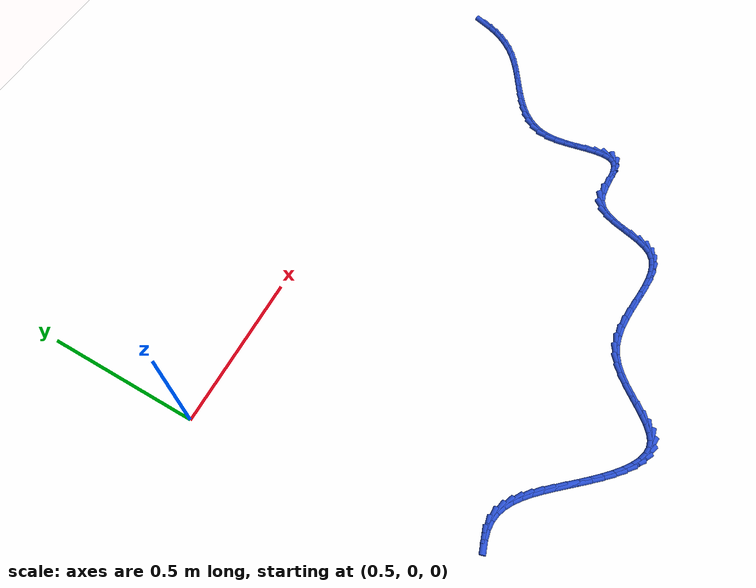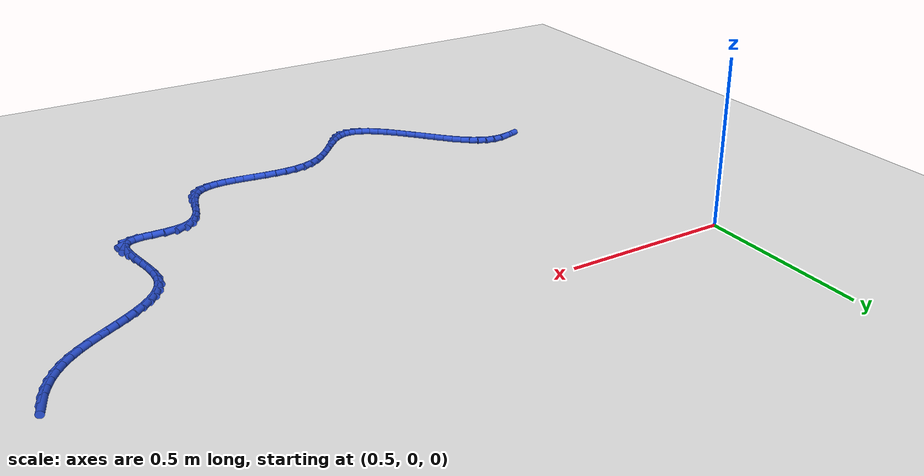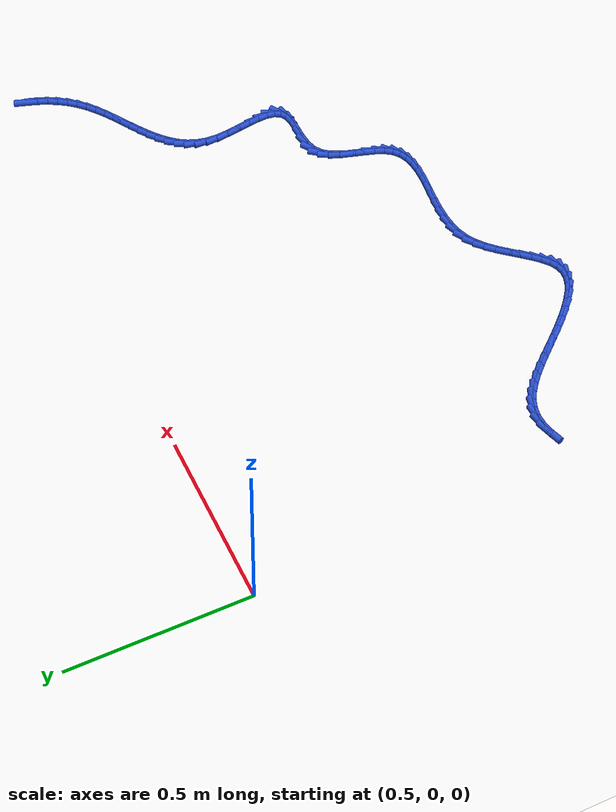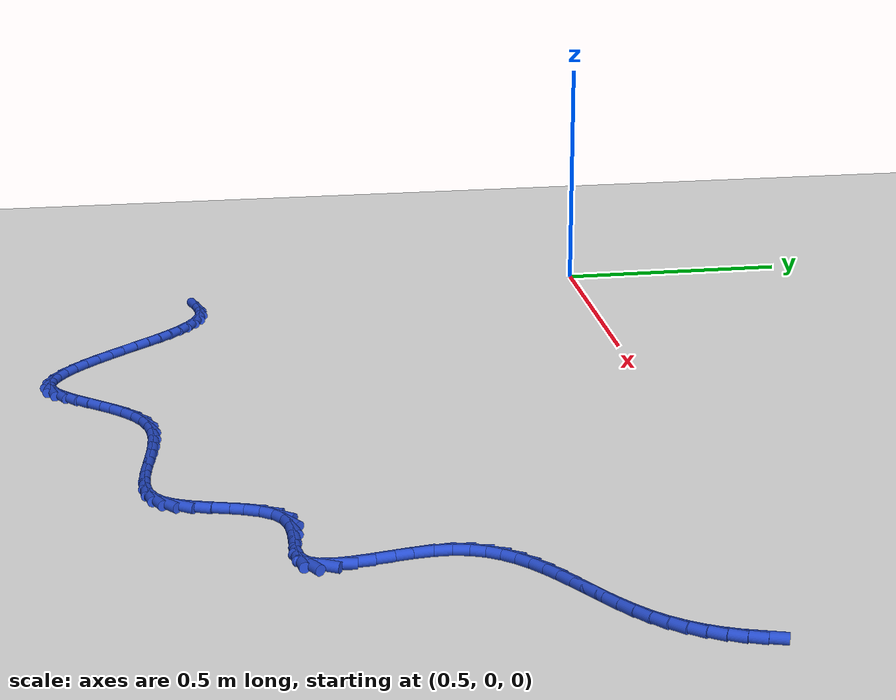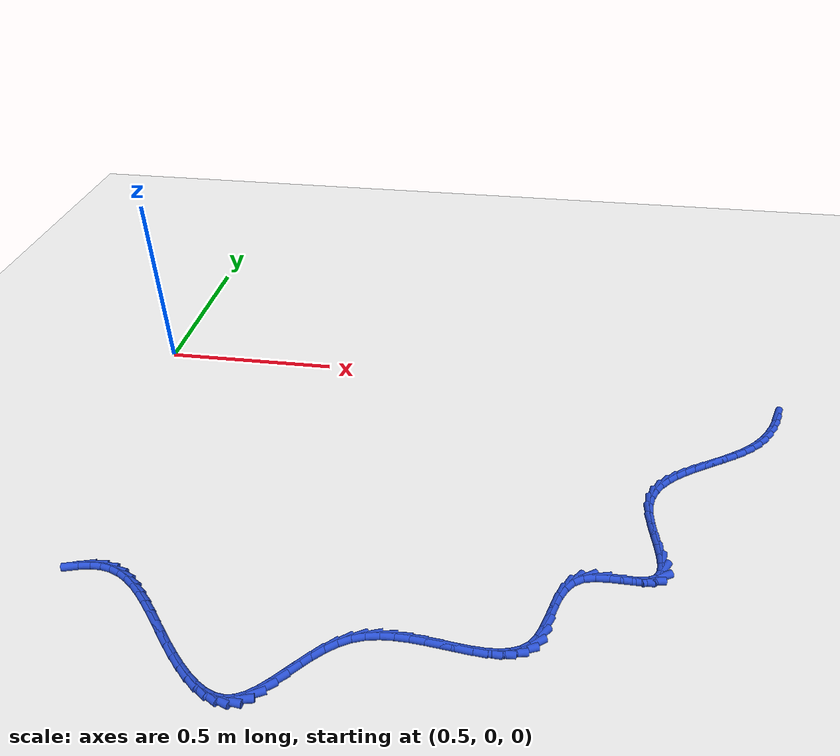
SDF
<sdf version="1.6">
 <world name="default">
  <model name="ground_plane">
   <static>1</static>
   <link name="link">
    <collision name="collision">
     <geometry><plane><normal>0 0 1</normal><size>100 100</size></plane></geometry>
     <surface><friction><ode><mu>100</mu><mu2>50</mu2></ode></friction></surface>
    </collision>
    <visual name="visual">
     <cast_shadows>0</cast_shadows>
     <geometry><plane><normal>0 0 1</normal><size>100 100</size></plane></geometry>
     <material>
      <script><uri>file://media/materials/scripts/gazebo.material</uri><name>Gazebo/WhiteGlow</name></script>
     </material>
    </visual>
   </link>
  </model>
  <model name="line">
   <link name="link_124">
    <pose>2.331811635820959 -0.08798505474516802 0.01 0 1.57 1.2636268892197953</pose>
    <collision name="collision">
     <geometry><cylinder><radius>0.01</radius><length>0.08</length></cylinder></geometry>
    </collision>
    <visual name="visual">
     <material>
      <script><name>Gazebo/Blue</name><uri>file://media/materials/scripts/gazebo.material</uri></script>
     </material>
     <geometry><cylinder><radius>0.01</radius><length>0.08</length></cylinder></geometry>
    </visual>
   </link>
   <link name="link_125">
    <pose>2.3225412678821025 -0.11720982022541768 0.01 0 1.57 1.1743032284686212</pose>
    <collision name="collision">
     <geometry><cylinder><radius>0.01</radius><length>0.08</length></cylinder></geometry>
    </collision>
    <visual name="visual">
     <material>
      <script><name>Gazebo/Blue</name><uri>file://media/materials/scripts/gazebo.material</uri></script>
     </material>
     <geometry><cylinder><radius>0.01</radius><length>0.08</length></cylinder></geometry>
    </visual>
   </link>
   <link name="link_126">
    <pose>2.3107899903072404 -0.14527823343732174 0.01 0 1.57 1.0808949239839147</pose>
    <collision name="collision">
     <geometry><cylinder><radius>0.01</radius><length>0.08</length></cylinder></geometry>
    </collision>
    <visual name="visual">
     <material>
      <script><name>Gazebo/Blue</name><uri>file://media/materials/scripts/gazebo.material</uri></script>
     </material>
     <geometry><cylinder><radius>0.01</radius><length>0.08</length></cylinder></geometry>
    </visual>
   </link>
   <link name="link_127">
    <pose>2.296532136829716 -0.172015309610965 0.01 0 1.57 0.9836285335362133</pose>
    <collision name="collision">
     <geometry><cylinder><radius>0.01</radius><length>0.08</length></cylinder></geometry>
    </collision>
    <visual name="visual">
     <material>
      <script><name>Gazebo/Blue</name><uri>file://media/materials/scripts/gazebo.material</uri></script>
     </material>
     <geometry><cylinder><radius>0.01</radius><length>0.08</length></cylinder></geometry>
    </visual>
   </link>
   <link name="link_128">
    <pose>2.2797420411828737 -0.19724606397643224 0.01 0 1.57 0.883028351896669</pose>
    <collision name="collision">
     <geometry><cylinder><radius>0.01</radius><length>0.08</length></cylinder></geometry>
    </collision>
    <visual name="visual">
     <material>
      <script><name>Gazebo/Blue</name><uri>file://media/materials/scripts/gazebo.material</uri></script>
     </material>
     <geometry><cylinder><radius>0.01</radius><length>0.08</length></cylinder></geometry>
    </visual>
   </link>
   <link name="link_129">
    <pose>2.2603940371000557 -0.22079551176380816 0.01 0 1.57 0.7807836445275408</pose>
    <collision name="collision">
     <geometry><cylinder><radius>0.01</radius><length>0.08</length></cylinder></geometry>
    </collision>
    <visual name="visual">
     <material>
      <script><name>Gazebo/Blue</name><uri>file://media/materials/scripts/gazebo.material</uri></script>
     </material>
     <geometry><cylinder><radius>0.01</radius><length>0.08</length></cylinder></geometry>
    </visual>
   </link>
   <link name="link_130">
    <pose>2.238481865519804 -0.24250638256301657 0.01 0 1.57 0.6915920482251551</pose>
    <collision name="collision">
     <geometry><cylinder><radius>0.01</radius><length>0.08</length></cylinder></geometry>
    </collision>
    <visual name="visual">
     <material>
      <script><name>Gazebo/Blue</name><uri>file://media/materials/scripts/gazebo.material</uri></script>
     </material>
     <geometry><cylinder><radius>0.01</radius><length>0.08</length></cylinder></geometry>
    </visual>
   </link>
   <link name="link_131">
    <pose>2.2143192161945024 -0.2625134463871454 0.01 0 1.57 0.6259267844372222</pose>
    <collision name="collision">
     <geometry><cylinder><radius>0.01</radius><length>0.08</length></cylinder></geometry>
    </collision>
    <visual name="visual">
     <material>
      <script><name>Gazebo/Blue</name><uri>file://media/materials/scripts/gazebo.material</uri></script>
     </material>
     <geometry><cylinder><radius>0.01</radius><length>0.08</length></cylinder></geometry>
    </visual>
   </link>
   <link name="link_132">
    <pose>2.1884821277397677 -0.28119093803152234 0.01 0 1.57 0.5822575842106126</pose>
    <collision name="collision">
     <geometry><cylinder><radius>0.01</radius><length>0.08</length></cylinder></geometry>
    </collision>
    <visual name="visual">
     <material>
      <script><name>Gazebo/Blue</name><uri>file://media/materials/scripts/gazebo.material</uri></script>
     </material>
     <geometry><cylinder><radius>0.01</radius><length>0.08</length></cylinder></geometry>
    </visual>
   </link>
   <link name="link_133">
    <pose>2.161554383528146 -0.298920161491276 0.01 0 1.57 0.5590087355679298</pose>
    <collision name="collision">
     <geometry><cylinder><radius>0.01</radius><length>0.08</length></cylinder></geometry>
    </collision>
    <visual name="visual">
     <material>
      <script><name>Gazebo/Blue</name><uri>file://media/materials/scripts/gazebo.material</uri></script>
     </material>
     <geometry><cylinder><radius>0.01</radius><length>0.08</length></cylinder></geometry>
    </visual>
   </link>
   <link name="link_134">
    <pose>2.134119766932181 -0.31608242076153487 0.01 0 1.57 0.5553869719928294</pose>
    <collision name="collision">
     <geometry><cylinder><radius>0.01</radius><length>0.08</length></cylinder></geometry>
    </collision>
    <visual name="visual">
     <material>
      <script><name>Gazebo/Blue</name><uri>file://media/materials/scripts/gazebo.material</uri></script>
     </material>
     <geometry><cylinder><radius>0.01</radius><length>0.08</length></cylinder></geometry>
    </visual>
   </link>
   <link name="link_135">
    <pose>2.106762061324421 -0.33305901983742786 0.01 0 1.57 0.5715992569731848</pose>
    <collision name="collision">
     <geometry><cylinder><radius>0.01</radius><length>0.08</length></cylinder></geometry>
    </collision>
    <visual name="visual">
     <material>
      <script><name>Gazebo/Blue</name><uri>file://media/materials/scripts/gazebo.material</uri></script>
     </material>
     <geometry><cylinder><radius>0.01</radius><length>0.08</length></cylinder></geometry>
    </visual>
   </link>
   <link name="link_136">
    <pose>2.0800650500774105 -0.3502312627140835 0.01 0 1.57 0.6089416949317016</pose>
    <collision name="collision">
     <geometry><cylinder><radius>0.01</radius><length>0.08</length></cylinder></geometry>
    </collision>
    <visual name="visual">
     <material>
      <script><name>Gazebo/Blue</name><uri>file://media/materials/scripts/gazebo.material</uri></script>
     </material>
     <geometry><cylinder><radius>0.01</radius><length>0.08</length></cylinder></geometry>
    </visual>
   </link>
   <link name="link_137">
    <pose>2.054612516563697 -0.3679804533866304 0.01 0 1.57 0.6697662660655723</pose>
    <collision name="collision">
     <geometry><cylinder><radius>0.01</radius><length>0.08</length></cylinder></geometry>
    </collision>
    <visual name="visual">
     <material>
      <script><name>Gazebo/Blue</name><uri>file://media/materials/scripts/gazebo.material</uri></script>
     </material>
     <geometry><cylinder><radius>0.01</radius><length>0.08</length></cylinder></geometry>
    </visual>
   </link>
   <link name="link_138">
    <pose>2.0309882441558242 -0.38668789585019714 0.01 0 1.57 0.757163992689501</pose>
    <collision name="collision">
     <geometry><cylinder><radius>0.01</radius><length>0.08</length></cylinder></geometry>
    </collision>
    <visual name="visual">
     <material>
      <script><name>Gazebo/Blue</name><uri>file://media/materials/scripts/gazebo.material</uri></script>
     </material>
     <geometry><cylinder><radius>0.01</radius><length>0.08</length></cylinder></geometry>
    </visual>
   </link>
   <link name="link_139">
    <pose>2.00977601622634 -0.4067348940999125 0.01 0 1.57 0.8739870892411312</pose>
    <collision name="collision">
     <geometry><cylinder><radius>0.01</radius><length>0.08</length></cylinder></geometry>
    </collision>
    <visual name="visual">
     <material>
      <script><name>Gazebo/Blue</name><uri>file://media/materials/scripts/gazebo.material</uri></script>
     </material>
     <geometry><cylinder><radius>0.01</radius><length>0.08</length></cylinder></geometry>
    </visual>
   </link>
   <link name="link_140">
    <pose>1.9915596161477889 -0.428502752130905 0.01 0 1.57 1.0207368319463395</pose>
    <collision name="collision">
     <geometry><cylinder><radius>0.01</radius><length>0.08</length></cylinder></geometry>
    </collision>
    <visual name="visual">
     <material>
      <script><name>Gazebo/Blue</name><uri>file://media/materials/scripts/gazebo.material</uri></script>
     </material>
     <geometry><cylinder><radius>0.01</radius><length>0.08</length></cylinder></geometry>
    </visual>
   </link>
   <link name="link_141">
    <pose>1.9769228272927177 -0.4523727739383034 0.01 0 1.57 1.192516378002611</pose>
    <collision name="collision">
     <geometry><cylinder><radius>0.01</radius><length>0.08</length></cylinder></geometry>
    </collision>
    <visual name="visual">
     <material>
      <script><name>Gazebo/Blue</name><uri>file://media/materials/scripts/gazebo.material</uri></script>
     </material>
     <geometry><cylinder><radius>0.01</radius><length>0.08</length></cylinder></geometry>
    </visual>
   </link>
   <link name="link_142">
    <pose>1.9664494330336713 -0.4787262635172362 0.01 0 1.57 1.3772684164345248</pose>
    <collision name="collision">
     <geometry><cylinder><radius>0.01</radius><length>0.08</length></cylinder></geometry>
    </collision>
    <visual name="visual">
     <material>
      <script><name>Gazebo/Blue</name><uri>file://media/materials/scripts/gazebo.material</uri></script>
     </material>
     <geometry><cylinder><radius>0.01</radius><length>0.08</length></cylinder></geometry>
    </visual>
   </link>
   <link name="link_143">
    <pose>1.9607232167431965 -0.5079445248628321 0.01 0 1.57 1.554357918771912</pose>
    <collision name="collision">
     <geometry><cylinder><radius>0.01</radius><length>0.08</length></cylinder></geometry>
    </collision>
    <visual name="visual">
     <material>
      <script><name>Gazebo/Blue</name><uri>file://media/materials/scripts/gazebo.material</uri></script>
     </material>
     <geometry><cylinder><radius>0.01</radius><length>0.08</length></cylinder></geometry>
    </visual>
   </link>
   <link name="link_144">
    <pose>1.9601912014083425 -0.5403057737519689 0.01 0 1.57 -1.465289503044301</pose>
    <collision name="collision">
     <geometry><cylinder><radius>0.01</radius><length>0.08</length></cylinder></geometry>
    </collision>
    <visual name="visual">
     <material>
      <script><name>Gazebo/Blue</name><uri>file://media/materials/scripts/gazebo.material</uri></script>
     </material>
     <geometry><cylinder><radius>0.01</radius><length>0.08</length></cylinder></geometry>
    </visual>
   </link>
   <link name="link_145">
    <pose>1.9638660674244635 -0.5750070369783028 0.01 0 1.57 -1.4027571383393003</pose>
    <collision name="collision">
     <geometry><cylinder><radius>0.01</radius><length>0.08</length></cylinder></geometry>
    </collision>
    <visual name="visual">
     <material>
      <script><name>Gazebo/Blue</name><uri>file://media/materials/scripts/gazebo.material</uri></script>
     </material>
     <geometry><cylinder><radius>0.01</radius><length>0.08</length></cylinder></geometry>
    </visual>
   </link>
   <link name="link_146">
    <pose>1.9699039683960988 -0.610599702465518 0.01 0 1.57 -1.38605283697218</pose>
    <collision name="collision">
     <geometry><cylinder><radius>0.01</radius><length>0.08</length></cylinder></geometry>
    </collision>
    <visual name="visual">
     <material>
      <script><name>Gazebo/Blue</name><uri>file://media/materials/scripts/gazebo.material</uri></script>
     </material>
     <geometry><cylinder><radius>0.01</radius><length>0.08</length></cylinder></geometry>
    </visual>
   </link>
   <link name="link_147">
    <pose>1.9764495799241497 -0.6456265061658928 0.01 0 1.57 -1.4145820203200898</pose>
    <collision name="collision">
     <geometry><cylinder><radius>0.01</radius><length>0.08</length></cylinder></geometry>
    </collision>
    <visual name="visual">
     <material>
      <script><name>Gazebo/Blue</name><uri>file://media/materials/scripts/gazebo.material</uri></script>
     </material>
     <geometry><cylinder><radius>0.01</radius><length>0.08</length></cylinder></geometry>
    </visual>
   </link>
   <link name="link_148">
    <pose>1.9816475776095148 -0.6786301840317063 0.01 0 1.57 -1.5033231194148846</pose>
    <collision name="collision">
     <geometry><cylinder><radius>0.01</radius><length>0.08</length></cylinder></geometry>
    </collision>
    <visual name="visual">
     <material>
      <script><name>Gazebo/Blue</name><uri>file://media/materials/scripts/gazebo.material</uri></script>
     </material>
     <geometry><cylinder><radius>0.01</radius><length>0.08</length></cylinder></geometry>
    </visual>
   </link>
   <link name="link_149">
    <pose>1.9836426370530953 -0.7081534720152377 0.01 0 1.57 1.4468418787387838</pose>
    <collision name="collision">
     <geometry><cylinder><radius>0.01</radius><length>0.08</length></cylinder></geometry>
    </collision>
    <visual name="visual">
     <material>
      <script><name>Gazebo/Blue</name><uri>file://media/materials/scripts/gazebo.material</uri></script>
     </material>
     <geometry><cylinder><radius>0.01</radius><length>0.08</length></cylinder></geometry>
    </visual>
   </link>
   <link name="link_150">
    <pose>1.980579433855791 -0.7327391060687662 0.01 0 1.57 1.0691400256446577</pose>
    <collision name="collision">
     <geometry><cylinder><radius>0.01</radius><length>0.08</length></cylinder></geometry>
    </collision>
    <visual name="visual">
     <material>
      <script><name>Gazebo/Blue</name><uri>file://media/materials/scripts/gazebo.material</uri></script>
     </material>
     <geometry><cylinder><radius>0.01</radius><length>0.08</length></cylinder></geometry>
    </visual>
   </link>
   <link name="link_151">
    <pose>1.9706026436185025 -0.7509298221445715 0.01 0 1.57 0.5143974170142721</pose>
    <collision name="collision">
     <geometry><cylinder><radius>0.01</radius><length>0.08</length></cylinder></geometry>
    </collision>
    <visual name="visual">
     <material>
      <script><name>Gazebo/Blue</name><uri>file://media/materials/scripts/gazebo.material</uri></script>
     </material>
     <geometry><cylinder><radius>0.01</radius><length>0.08</length></cylinder></geometry>
    </visual>
   </link>
   <link name="link_152">
    <pose>1.9520260085979366 -0.761428338306848 0.01 0 1.57 0.14755343116763175</pose>
    <collision name="collision">
     <geometry><cylinder><radius>0.01</radius><length>0.08</length></cylinder></geometry>
    </collision>
    <visual name="visual">
     <material>
      <script><name>Gazebo/Blue</name><uri>file://media/materials/scripts/gazebo.material</uri></script>
     </material>
     <geometry><cylinder><radius>0.01</radius><length>0.08</length></cylinder></geometry>
    </visual>
   </link>
   <link name="link_153">
    <pose>1.9257031744851034 -0.7653407981417354 0.01 0 1.57 0.009202789365687431</pose>
    <collision name="collision">
     <geometry><cylinder><radius>0.01</radius><length>0.08</length></cylinder></geometry>
    </collision>
    <visual name="visual">
     <material>
      <script><name>Gazebo/Blue</name><uri>file://media/materials/scripts/gazebo.material</uri></script>
     </material>
     <geometry><cylinder><radius>0.01</radius><length>0.08</length></cylinder></geometry>
    </visual>
   </link>
   <link name="link_154">
    <pose>1.8944482217762892 -0.7656284390084244 0.01 0 1.57 -0.009841017761058352</pose>
    <collision name="collision">
     <geometry><cylinder><radius>0.01</radius><length>0.08</length></cylinder></geometry>
    </collision>
    <visual name="visual">
     <material>
      <script><name>Gazebo/Blue</name><uri>file://media/materials/scripts/gazebo.material</uri></script>
     </material>
     <geometry><cylinder><radius>0.01</radius><length>0.08</length></cylinder></geometry>
    </visual>
   </link>
   <link name="link_155">
    <pose>1.861125962138295 -0.7653005034730453 0.01 0 1.57 0.06342737171430715</pose>
    <collision name="collision">
     <geometry><cylinder><radius>0.01</radius><length>0.08</length></cylinder></geometry>
    </collision>
    <visual name="visual">
     <material>
      <script><name>Gazebo/Blue</name><uri>file://media/materials/scripts/gazebo.material</uri></script>
     </material>
     <geometry><cylinder><radius>0.01</radius><length>0.08</length></cylinder></geometry>
    </visual>
   </link>
   <link name="link_156">
    <pose>1.8286012072379214 -0.7673662341017286 0.01 0 1.57 0.2532125493589314</pose>
    <collision name="collision">
     <geometry><cylinder><radius>0.01</radius><length>0.08</length></cylinder></geometry>
    </collision>
    <visual name="visual">
     <material>
      <script><name>Gazebo/Blue</name><uri>file://media/materials/scripts/gazebo.material</uri></script>
     </material>
     <geometry><cylinder><radius>0.01</radius><length>0.08</length></cylinder></geometry>
    </visual>
   </link>
   <link name="link_157">
    <pose>1.7997387687419701 -0.7748348734606043 0.01 0 1.57 0.5960186981275505</pose>
    <collision name="collision">
     <geometry><cylinder><radius>0.01</radius><length>0.08</length></cylinder></geometry>
    </collision>
    <visual name="visual">
     <material>
      <script><name>Gazebo/Blue</name><uri>file://media/materials/scripts/gazebo.material</uri></script>
     </material>
     <geometry><cylinder><radius>0.01</radius><length>0.08</length></cylinder></geometry>
    </visual>
   </link>
   <link name="link_158">
    <pose>1.7770069218758453 -0.790254065474981 0.01 0 1.57 0.9287230883627581</pose>
    <collision name="collision">
     <geometry><cylinder><radius>0.01</radius><length>0.08</length></cylinder></geometry>
    </collision>
    <visual name="visual">
     <material>
      <script><name>Gazebo/Blue</name><uri>file://media/materials/scripts/gazebo.material</uri></script>
     </material>
     <geometry><cylinder><radius>0.01</radius><length>0.08</length></cylinder></geometry>
    </visual>
   </link>
   <link name="link_159">
    <pose>1.760068593240008 -0.8129058144539288 0.01 0 1.57 1.1419424818985295</pose>
    <collision name="collision">
     <geometry><cylinder><radius>0.01</radius><length>0.08</length></cylinder></geometry>
    </collision>
    <visual name="visual">
     <material>
      <script><name>Gazebo/Blue</name><uri>file://media/materials/scripts/gazebo.material</uri></script>
     </material>
     <geometry><cylinder><radius>0.01</radius><length>0.08</length></cylinder></geometry>
    </visual>
   </link>
   <link name="link_160">
    <pose>1.7473767547498749 -0.8406636452333439 0.01 0 1.57 1.2562915481730788</pose>
    <collision name="collision">
     <geometry><cylinder><radius>0.01</radius><length>0.08</length></cylinder></geometry>
    </collision>
    <visual name="visual">
     <material>
      <script><name>Gazebo/Blue</name><uri>file://media/materials/scripts/gazebo.material</uri></script>
     </material>
     <geometry><cylinder><radius>0.01</radius><length>0.08</length></cylinder></geometry>
    </visual>
   </link>
   <link name="link_161">
    <pose>1.7373796164234725 -0.8713955394376178 0.01 0 1.57 1.2973904456608767</pose>
    <collision name="collision">
     <geometry><cylinder><radius>0.01</radius><length>0.08</length></cylinder></geometry>
    </collision>
    <visual name="visual">
     <material>
      <script><name>Gazebo/Blue</name><uri>file://media/materials/scripts/gazebo.material</uri></script>
     </material>
     <geometry><cylinder><radius>0.01</radius><length>0.08</length></cylinder></geometry>
    </visual>
   </link>
   <link name="link_162">
    <pose>1.7285253882788236 -0.9029694786911411 0.01 0 1.57 1.2739583812838928</pose>
    <collision name="collision">
     <geometry><cylinder><radius>0.01</radius><length>0.08</length></cylinder></geometry>
    </collision>
    <visual name="visual">
     <material>
      <script><name>Gazebo/Blue</name><uri>file://media/materials/scripts/gazebo.material</uri></script>
     </material>
     <geometry><cylinder><radius>0.01</radius><length>0.08</length></cylinder></geometry>
    </visual>
   </link>
   <link name="link_163">
    <pose>1.7192622803339555 -0.9332534446183056 0.01 0 1.57 1.1750131368189771</pose>
    <collision name="collision">
     <geometry><cylinder><radius>0.01</radius><length>0.08</length></cylinder></geometry>
    </collision>
    <visual name="visual">
     <material>
      <script><name>Gazebo/Blue</name><uri>file://media/materials/scripts/gazebo.material</uri></script>
     </material>
     <geometry><cylinder><radius>0.01</radius><length>0.08</length></cylinder></geometry>
    </visual>
   </link>
   <link name="link_164">
    <pose>1.708038502606892 -0.9601154188435026 0.01 0 1.57 0.9672516566201933</pose>
    <collision name="collision">
     <geometry><cylinder><radius>0.01</radius><length>0.08</length></cylinder></geometry>
    </collision>
    <visual name="visual">
     <material>
      <script><name>Gazebo/Blue</name><uri>file://media/materials/scripts/gazebo.material</uri></script>
     </material>
     <geometry><cylinder><radius>0.01</radius><length>0.08</length></cylinder></geometry>
    </visual>
   </link>
   <link name="link_165">
    <pose>1.6933257634364287 -0.9814582355274036 0.01 0 1.57 0.6723653011747278</pose>
    <collision name="collision">
     <geometry><cylinder><radius>0.01</radius><length>0.08</length></cylinder></geometry>
    </collision>
    <visual name="visual">
     <material>
      <script><name>Gazebo/Blue</name><uri>file://media/materials/scripts/gazebo.material</uri></script>
     </material>
     <geometry><cylinder><radius>0.01</radius><length>0.08</length></cylinder></geometry>
    </visual>
   </link>
   <link name="link_166">
    <pose>1.6744647983527339 -0.9964736635597502 0.01 0 1.57 0.39912812423110805</pose>
    <collision name="collision">
     <geometry><cylinder><radius>0.01</radius><length>0.08</length></cylinder></geometry>
    </collision>
    <visual name="visual">
     <material>
      <script><name>Gazebo/Blue</name><uri>file://media/materials/scripts/gazebo.material</uri></script>
     </material>
     <geometry><cylinder><radius>0.01</radius><length>0.08</length></cylinder></geometry>
    </visual>
   </link>
   <link name="link_167">
    <pose>1.6519001666371722 -1.005990655087397 0.01 0 1.57 0.19002081908434748</pose>
    <collision name="collision">
     <geometry><cylinder><radius>0.01</radius><length>0.08</length></cylinder></geometry>
    </collision>
    <visual name="visual">
     <material>
      <script><name>Gazebo/Blue</name><uri>file://media/materials/scripts/gazebo.material</uri></script>
     </material>
     <geometry><cylinder><radius>0.01</radius><length>0.08</length></cylinder></geometry>
    </visual>
   </link>
   <link name="link_168">
    <pose>1.6261477288052852 -1.010943915722531 0.01 0 1.57 0.04655434461175658</pose>
    <collision name="collision">
     <geometry><cylinder><radius>0.01</radius><length>0.08</length></cylinder></geometry>
    </collision>
    <visual name="visual">
     <material>
      <script><name>Gazebo/Blue</name><uri>file://media/materials/scripts/gazebo.material</uri></script>
     </material>
     <geometry><cylinder><radius>0.01</radius><length>0.08</length></cylinder></geometry>
    </visual>
   </link>
   <link name="link_169">
    <pose>1.5977233453726158 -1.0122681510773404 0.01 0 1.57 -0.0447726529820683</pose>
    <collision name="collision">
     <geometry><cylinder><radius>0.01</radius><length>0.08</length></cylinder></geometry>
    </collision>
    <visual name="visual">
     <material>
      <script><name>Gazebo/Blue</name><uri>file://media/materials/scripts/gazebo.material</uri></script>
     </material>
     <geometry><cylinder><radius>0.01</radius><length>0.08</length></cylinder></geometry>
    </visual>
   </link>
   <link name="link_170">
    <pose>1.5671428768547049 -1.0108980667640115 0.01 0 1.57 -0.09682941820367201</pose>
    <collision name="collision">
     <geometry><cylinder><radius>0.01</radius><length>0.08</length></cylinder></geometry>
    </collision>
    <visual name="visual">
     <material>
      <script><name>Gazebo/Blue</name><uri>file://media/materials/scripts/gazebo.material</uri></script>
     </material>
     <geometry><cylinder><radius>0.01</radius><length>0.08</length></cylinder></geometry>
    </visual>
   </link>
   <link name="link_171">
    <pose>1.5349221837670946 -1.007768368394732 0.01 0 1.57 -0.11804511307215919</pose>
    <collision name="collision">
     <geometry><cylinder><radius>0.01</radius><length>0.08</length></cylinder></geometry>
    </collision>
    <visual name="visual">
     <material>
      <script><name>Gazebo/Blue</name><uri>file://media/materials/scripts/gazebo.material</uri></script>
     </material>
     <geometry><cylinder><radius>0.01</radius><length>0.08</length></cylinder></geometry>
    </visual>
   </link>
   <link name="link_172">
    <pose>1.5015771266253277 -1.0038137615816896 0.01 0 1.57 -0.1127569909714504</pose>
    <collision name="collision">
     <geometry><cylinder><radius>0.01</radius><length>0.08</length></cylinder></geometry>
    </collision>
    <visual name="visual">
     <material>
      <script><name>Gazebo/Blue</name><uri>file://media/materials/scripts/gazebo.material</uri></script>
     </material>
     <geometry><cylinder><radius>0.01</radius><length>0.08</length></cylinder></geometry>
    </visual>
   </link>
   <link name="link_173">
    <pose>1.4676235659449444 -0.9999689519370711 0.01 0 1.57 -0.08206546659520646</pose>
    <collision name="collision">
     <geometry><cylinder><radius>0.01</radius><length>0.08</length></cylinder></geometry>
    </collision>
    <visual name="visual">
     <material>
      <script><name>Gazebo/Blue</name><uri>file://media/materials/scripts/gazebo.material</uri></script>
     </material>
     <geometry><cylinder><radius>0.01</radius><length>0.08</length></cylinder></geometry>
    </visual>
   </link>
   <link name="link_174">
    <pose>1.4335773622414876 -0.9971686450730637 0.01 0 1.57 -0.02441589505083264</pose>
    <collision name="collision">
     <geometry><cylinder><radius>0.01</radius><length>0.08</length></cylinder></geometry>
    </collision>
    <visual name="visual">
     <material>
      <script><name>Gazebo/Blue</name><uri>file://media/materials/scripts/gazebo.material</uri></script>
     </material>
     <geometry><cylinder><radius>0.01</radius><length>0.08</length></cylinder></geometry>
    </visual>
   </link>
   <link name="link_175">
    <pose>1.3999543760304987 -0.9963475466018552 0.01 0 1.57 0.0639446876737144</pose>
    <collision name="collision">
     <geometry><cylinder><radius>0.01</radius><length>0.08</length></cylinder></geometry>
    </collision>
    <visual name="visual">
     <material>
      <script><name>Gazebo/Blue</name><uri>file://media/materials/scripts/gazebo.material</uri></script>
     </material>
     <geometry><cylinder><radius>0.01</radius><length>0.08</length></cylinder></geometry>
    </visual>
   </link>
   <link name="link_176">
    <pose>1.3672704678275207 -0.9984403621356321 0.01 0 1.57 0.18800704665382542</pose>
    <collision name="collision">
     <geometry><cylinder><radius>0.01</radius><length>0.08</length></cylinder></geometry>
    </collision>
    <visual name="visual">
     <material>
      <script><name>Gazebo/Blue</name><uri>file://media/materials/scripts/gazebo.material</uri></script>
     </material>
     <geometry><cylinder><radius>0.01</radius><length>0.08</length></cylinder></geometry>
    </visual>
   </link>
   <link name="link_177">
    <pose>1.3360414981480928 -1.0043817972865818 0.01 0 1.57 0.35134729129583747</pose>
    <collision name="collision">
     <geometry><cylinder><radius>0.01</radius><length>0.08</length></cylinder></geometry>
    </collision>
    <visual name="visual">
     <material>
      <script><name>Gazebo/Blue</name><uri>file://media/materials/scripts/gazebo.material</uri></script>
     </material>
     <geometry><cylinder><radius>0.01</radius><length>0.08</length></cylinder></geometry>
    </visual>
   </link>
   <link name="link_178">
    <pose>1.3067833272891431 -1.0151065570964939 0.01 0 1.57 0.5372479107132475</pose>
    <collision name="collision">
     <geometry><cylinder><radius>0.01</radius><length>0.08</length></cylinder></geometry>
    </collision>
    <visual name="visual">
     <material>
      <script><name>Gazebo/Blue</name><uri>file://media/materials/scripts/gazebo.material</uri></script>
     </material>
     <geometry><cylinder><radius>0.01</radius><length>0.08</length></cylinder></geometry>
    </visual>
   </link>
   <link name="link_179">
    <pose>1.2798573178181893 -1.03114624136285 0.01 0 1.57 0.6860309943360484</pose>
    <collision name="collision">
     <geometry><cylinder><radius>0.01</radius><length>0.08</length></cylinder></geometry>
    </collision>
    <visual name="visual">
     <material>
      <script><name>Gazebo/Blue</name><uri>file://media/materials/scripts/gazebo.material</uri></script>
     </material>
     <geometry><cylinder><radius>0.01</radius><length>0.08</length></cylinder></geometry>
    </visual>
   </link>
   <link name="link_180">
    <pose>1.2550275340910977 -1.0514740189440204 0.01 0 1.57 0.7875279104452485</pose>
    <collision name="collision">
     <geometry><cylinder><radius>0.01</radius><length>0.08</length></cylinder></geometry>
    </collision>
    <visual name="visual">
     <material>
      <script><name>Gazebo/Blue</name><uri>file://media/materials/scripts/gazebo.material</uri></script>
     </material>
     <geometry><cylinder><radius>0.01</radius><length>0.08</length></cylinder></geometry>
    </visual>
   </link>
   <link name="link_181">
    <pose>1.2319137170015524 -1.074686499478339 0.01 0 1.57 0.8480568160142335</pose>
    <collision name="collision">
     <geometry><cylinder><radius>0.01</radius><length>0.08</length></cylinder></geometry>
    </collision>
    <visual name="visual">
     <material>
      <script><name>Gazebo/Blue</name><uri>file://media/materials/scripts/gazebo.material</uri></script>
     </material>
     <geometry><cylinder><radius>0.01</radius><length>0.08</length></cylinder></geometry>
    </visual>
   </link>
   <link name="link_182">
    <pose>1.2101356074432337 -1.0993802926041385 0.01 0 1.57 0.8717952977293579</pose>
    <collision name="collision">
     <geometry><cylinder><radius>0.01</radius><length>0.08</length></cylinder></geometry>
    </collision>
    <visual name="visual">
     <material>
      <script><name>Gazebo/Blue</name><uri>file://media/materials/scripts/gazebo.material</uri></script>
     </material>
     <geometry><cylinder><radius>0.01</radius><length>0.08</length></cylinder></geometry>
    </visual>
   </link>
   <link name="link_183">
    <pose>1.1893129463098249 -1.1241520079597518 0.01 0 1.57 0.8584768370693168</pose>
    <collision name="collision">
     <geometry><cylinder><radius>0.01</radius><length>0.08</length></cylinder></geometry>
    </collision>
    <visual name="visual">
     <material>
      <script><name>Gazebo/Blue</name><uri>file://media/materials/scripts/gazebo.material</uri></script>
     </material>
     <geometry><cylinder><radius>0.01</radius><length>0.08</length></cylinder></geometry>
    </visual>
   </link>
   <link name="link_184">
    <pose>1.1690654744950084 -1.1475982551835133 0.01 0 1.57 0.8017040093458795</pose>
    <collision name="collision">
     <geometry><cylinder><radius>0.01</radius><length>0.08</length></cylinder></geometry>
    </collision>
    <visual name="visual">
     <material>
      <script><name>Gazebo/Blue</name><uri>file://media/materials/scripts/gazebo.material</uri></script>
     </material>
     <geometry><cylinder><radius>0.01</radius><length>0.08</length></cylinder></geometry>
    </visual>
   </link>
   <link name="link_185">
    <pose>1.1490129328924659 -1.1683156439137554 0.01 0 1.57 0.6865246648277298</pose>
    <collision name="collision">
     <geometry><cylinder><radius>0.01</radius><length>0.08</length></cylinder></geometry>
    </collision>
    <visual name="visual">
     <material>
      <script><name>Gazebo/Blue</name><uri>file://media/materials/scripts/gazebo.material</uri></script>
     </material>
     <geometry><cylinder><radius>0.01</radius><length>0.08</length></cylinder></geometry>
    </visual>
   </link>
   <link name="link_186">
    <pose>1.1287750623958808 -1.1849007837888126 0.01 0 1.57 0.48824634846237003</pose>
    <collision name="collision">
     <geometry><cylinder><radius>0.01</radius><length>0.08</length></cylinder></geometry>
    </collision>
    <visual name="visual">
     <material>
      <script><name>Gazebo/Blue</name><uri>file://media/materials/scripts/gazebo.material</uri></script>
     </material>
     <geometry><cylinder><radius>0.01</radius><length>0.08</length></cylinder></geometry>
    </visual>
   </link>
   <link name="link_187">
    <pose>1.1079716038989338 -1.1959502844470165 0.01 0 1.57 0.191074723050674</pose>
    <collision name="collision">
     <geometry><cylinder><radius>0.01</radius><length>0.08</length></cylinder></geometry>
    </collision>
    <visual name="visual">
     <material>
      <script><name>Gazebo/Blue</name><uri>file://media/materials/scripts/gazebo.material</uri></script>
     </material>
     <geometry><cylinder><radius>0.01</radius><length>0.08</length></cylinder></geometry>
    </visual>
   </link>
   <link name="link_188">
    <pose>1.0862452960723872 -1.2001529028536113 0.01 0 1.57 -0.11859887833769525</pose>
    <collision name="collision">
     <geometry><cylinder><radius>0.01</radius><length>0.08</length></cylinder></geometry>
    </collision>
    <visual name="visual">
     <material>
      <script><name>Gazebo/Blue</name><uri>file://media/materials/scripts/gazebo.material</uri></script>
     </material>
     <geometry><cylinder><radius>0.01</radius><length>0.08</length></cylinder></geometry>
    </visual>
   </link>
   <link name="link_189">
    <pose>1.0635511770306285 -1.1974487151264332 0.01 0 1.57 -0.3573990393949133</pose>
    <collision name="collision">
     <geometry><cylinder><radius>0.01</radius><length>0.08</length></cylinder></geometry>
    </collision>
    <visual name="visual">
     <material>
      <script><name>Gazebo/Blue</name><uri>file://media/materials/scripts/gazebo.material</uri></script>
     </material>
     <geometry><cylinder><radius>0.01</radius><length>0.08</length></cylinder></geometry>
    </visual>
   </link>
   <link name="link_190">
    <pose>1.040069394637726 -1.1886797655006378 0.01 0 1.57 -0.5256719308843245</pose>
    <collision name="collision">
     <geometry><cylinder><radius>0.01</radius><length>0.08</length></cylinder></geometry>
    </collision>
    <visual name="visual">
     <material>
      <script><name>Gazebo/Blue</name><uri>file://media/materials/scripts/gazebo.material</uri></script>
     </material>
     <geometry><cylinder><radius>0.01</radius><length>0.08</length></cylinder></geometry>
    </visual>
   </link>
   <link name="link_191">
    <pose>1.0159850686253038 -1.1747080194543613 0.01 0 1.57 -0.6418342222689443</pose>
    <collision name="collision">
     <geometry><cylinder><radius>0.01</radius><length>0.08</length></cylinder></geometry>
    </collision>
    <visual name="visual">
     <material>
      <script><name>Gazebo/Blue</name><uri>file://media/materials/scripts/gazebo.material</uri></script>
     </material>
     <geometry><cylinder><radius>0.01</radius><length>0.08</length></cylinder></geometry>
    </visual>
   </link>
   <link name="link_192">
    <pose>0.9914833187249871 -1.1563954424657414 0.01 0 1.57 -0.7222350051920442</pose>
    <collision name="collision">
     <geometry><cylinder><radius>0.01</radius><length>0.08</length></cylinder></geometry>
    </collision>
    <visual name="visual">
     <material>
      <script><name>Gazebo/Blue</name><uri>file://media/materials/scripts/gazebo.material</uri></script>
     </material>
     <geometry><cylinder><radius>0.01</radius><length>0.08</length></cylinder></geometry>
    </visual>
   </link>
   <link name="link_193">
    <pose>0.9667492646684016 -1.1346040000129156 0.01 0 1.57 -0.7778175153749204</pose>
    <collision name="collision">
     <geometry><cylinder><radius>0.01</radius><length>0.08</length></cylinder></geometry>
    </collision>
    <visual name="visual">
     <material>
      <script><name>Gazebo/Blue</name><uri>file://media/materials/scripts/gazebo.material</uri></script>
     </material>
     <geometry><cylinder><radius>0.01</radius><length>0.08</length></cylinder></geometry>
    </visual>
   </link>
   <link name="link_194">
    <pose>0.9419680261871725 -1.1101956575740208 0.01 0 1.57 -0.8153061112231462</pose>
    <collision name="collision">
     <geometry><cylinder><radius>0.01</radius><length>0.08</length></cylinder></geometry>
    </collision>
    <visual name="visual">
     <material>
      <script><name>Gazebo/Blue</name><uri>file://media/materials/scripts/gazebo.material</uri></script>
     </material>
     <geometry><cylinder><radius>0.01</radius><length>0.08</length></cylinder></geometry>
    </visual>
   </link>
   <link name="link_195">
    <pose>0.9173247230129248 -1.0840323806271952 0.01 0 1.57 -0.8386017903113361</pose>
    <collision name="collision">
     <geometry><cylinder><radius>0.01</radius><length>0.08</length></cylinder></geometry>
    </collision>
    <visual name="visual">
     <material>
      <script><name>Gazebo/Blue</name><uri>file://media/materials/scripts/gazebo.material</uri></script>
     </material>
     <geometry><cylinder><radius>0.01</radius><length>0.08</length></cylinder></geometry>
    </visual>
   </link>
   <link name="link_196">
    <pose>0.8930044748772838 -1.0569761346505755 0.01 0 1.57 -0.8496281378050239</pose>
    <collision name="collision">
     <geometry><cylinder><radius>0.01</radius><length>0.08</length></cylinder></geometry>
    </collision>
    <visual name="visual">
     <material>
      <script><name>Gazebo/Blue</name><uri>file://media/materials/scripts/gazebo.material</uri></script>
     </material>
     <geometry><cylinder><radius>0.01</radius><length>0.08</length></cylinder></geometry>
    </visual>
   </link>
   <link name="link_197">
    <pose>0.8691890641587187 -1.0298865966825206 0.01 0 1.57 -0.8474234854848631</pose>
    <collision name="collision">
     <geometry><cylinder><radius>0.01</radius><length>0.08</length></cylinder></geometry>
    </collision>
    <visual name="visual">
     <material>
      <script><name>Gazebo/Blue</name><uri>file://media/materials/scripts/gazebo.material</uri></script>
     </material>
     <geometry><cylinder><radius>0.01</radius><length>0.08</length></cylinder></geometry>
    </visual>
   </link>
   <link name="link_198">
    <pose>0.8459006589950812 -1.0035139954769692 0.01 0 1.57 -0.828992621093132</pose>
    <collision name="collision">
     <geometry><cylinder><radius>0.01</radius><length>0.08</length></cylinder></geometry>
    </collision>
    <visual name="visual">
     <material>
      <script><name>Gazebo/Blue</name><uri>file://media/materials/scripts/gazebo.material</uri></script>
     </material>
     <geometry><cylinder><radius>0.01</radius><length>0.08</length></cylinder></geometry>
    </visual>
   </link>
   <link name="link_199">
    <pose>0.8229349256251037 -0.9784532463009136 0.01 0 1.57 -0.7919409388216899</pose>
    <collision name="collision">
     <geometry><cylinder><radius>0.01</radius><length>0.08</length></cylinder></geometry>
    </collision>
    <visual name="visual">
     <material>
      <script><name>Gazebo/Blue</name><uri>file://media/materials/scripts/gazebo.material</uri></script>
     </material>
     <geometry><cylinder><radius>0.01</radius><length>0.08</length></cylinder></geometry>
    </visual>
   </link>
   <link name="link_200">
    <pose>0.8000702995850841 -0.9552874492423643 0.01 0 1.57 -0.7328432239655698</pose>
    <collision name="collision">
     <geometry><cylinder><radius>0.01</radius><length>0.08</length></cylinder></geometry>
    </collision>
    <visual name="visual">
     <material>
      <script><name>Gazebo/Blue</name><uri>file://media/materials/scripts/gazebo.material</uri></script>
     </material>
     <geometry><cylinder><radius>0.01</radius><length>0.08</length></cylinder></geometry>
    </visual>
   </link>
   <link name="link_201">
    <pose>0.777085216411319 -0.9345997043893319 0.01 0 1.57 -0.6470927371073024</pose>
    <collision name="collision">
     <geometry><cylinder><radius>0.01</radius><length>0.08</length></cylinder></geometry>
    </collision>
    <visual name="visual">
     <material>
      <script><name>Gazebo/Blue</name><uri>file://media/materials/scripts/gazebo.material</uri></script>
     </material>
     <geometry><cylinder><radius>0.01</radius><length>0.08</length></cylinder></geometry>
    </visual>
   </link>
   <link name="link_202">
    <pose>0.7537581116401053 -0.9169731118298274 0.01 0 1.57 -0.5295130775276575</pose>
    <collision name="collision">
     <geometry><cylinder><radius>0.01</radius><length>0.08</length></cylinder></geometry>
    </collision>
    <visual name="visual">
     <material>
      <script><name>Gazebo/Blue</name><uri>file://media/materials/scripts/gazebo.material</uri></script>
     </material>
     <geometry><cylinder><radius>0.01</radius><length>0.08</length></cylinder></geometry>
    </visual>
   </link>
   <link name="link_203">
    <pose>0.7298674208077401 -0.9029907716518607 0.01 0 1.57 -0.3764700950689594</pose>
    <collision name="collision">
     <geometry><cylinder><radius>0.01</radius><length>0.08</length></cylinder></geometry>
    </collision>
    <visual name="visual">
     <material>
      <script><name>Gazebo/Blue</name><uri>file://media/materials/scripts/gazebo.material</uri></script>
     </material>
     <geometry><cylinder><radius>0.01</radius><length>0.08</length></cylinder></geometry>
    </visual>
   </link>
   <link name="link_204">
    <pose>0.7051915794505206 -0.8932357839434427 0.01 0 1.57 -0.190197874429913</pose>
    <collision name="collision">
     <geometry><cylinder><radius>0.01</radius><length>0.08</length></cylinder></geometry>
    </collision>
    <visual name="visual">
     <material>
      <script><name>Gazebo/Blue</name><uri>file://media/materials/scripts/gazebo.material</uri></script>
     </material>
     <geometry><cylinder><radius>0.01</radius><length>0.08</length></cylinder></geometry>
    </visual>
   </link>
   <link name="link_205">
    <pose>0.6795090231047439 -0.8882912487925839 0.01 0 1.57 0.01412111123980485</pose>
    <collision name="collision">
     <geometry><cylinder><radius>0.01</radius><length>0.08</length></cylinder></geometry>
    </collision>
    <visual name="visual">
     <material>
      <script><name>Gazebo/Blue</name><uri>file://media/materials/scripts/gazebo.material</uri></script>
     </material>
     <geometry><cylinder><radius>0.01</radius><length>0.08</length></cylinder></geometry>
    </visual>
   </link>
   <link name="link_206">
    <pose>0.6526193413616252 -0.88867098622063 0.01 0 1.57 0.18396622978280147</pose>
    <collision name="collision">
     <geometry><cylinder><radius>0.01</radius><length>0.08</length></cylinder></geometry>
    </collision>
    <visual name="visual">
     <material>
      <script><name>Gazebo/Blue</name><uri>file://media/materials/scripts/gazebo.material</uri></script>
     </material>
     <geometry><cylinder><radius>0.01</radius><length>0.08</length></cylinder></geometry>
    </visual>
   </link>
   <link name="link_207">
    <pose>0.6246305014330595 -0.8938788717157792 0.01 0 1.57 0.29629615519430186</pose>
    <collision name="collision">
     <geometry><cylinder><radius>0.01</radius><length>0.08</length></cylinder></geometry>
    </collision>
    <visual name="visual">
     <material>
      <script><name>Gazebo/Blue</name><uri>file://media/materials/scripts/gazebo.material</uri></script>
     </material>
     <geometry><cylinder><radius>0.01</radius><length>0.08</length></cylinder></geometry>
    </visual>
   </link>
  </model>
 </world>
</sdf>
